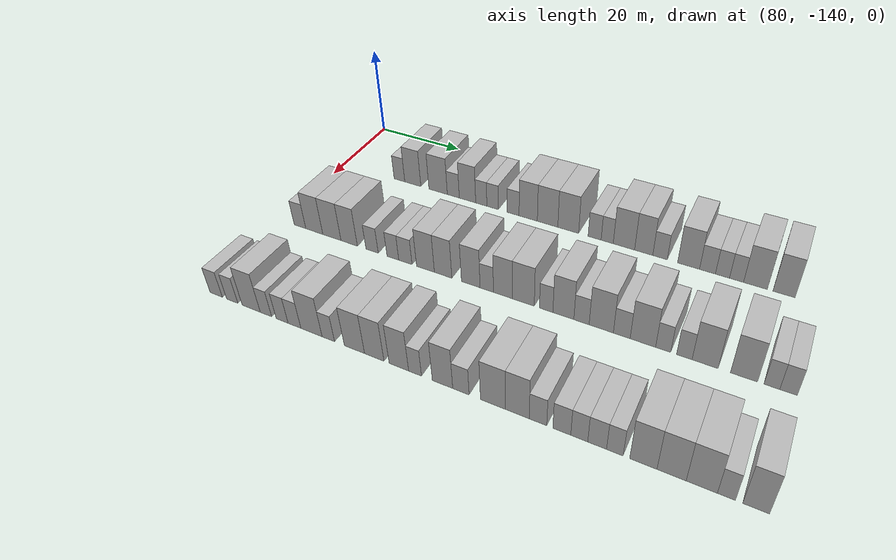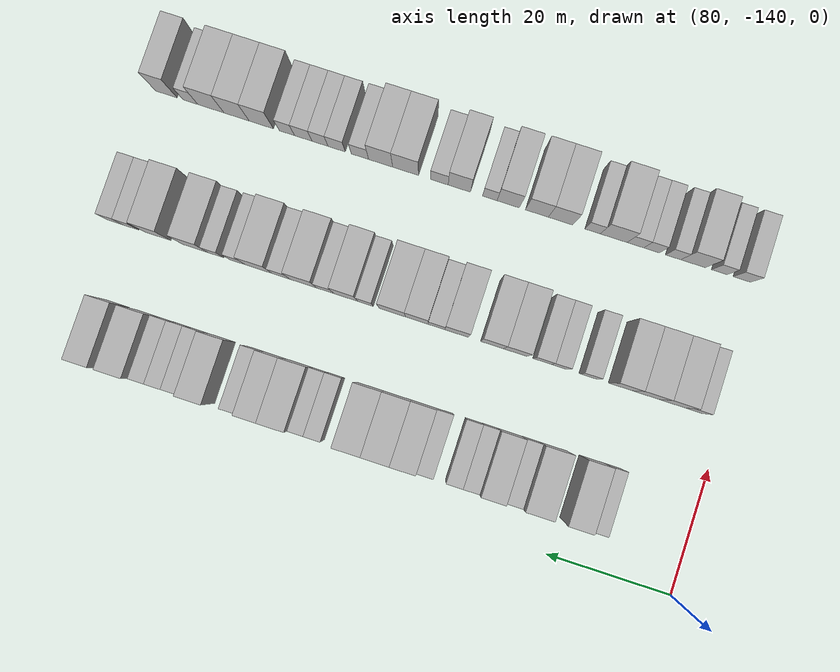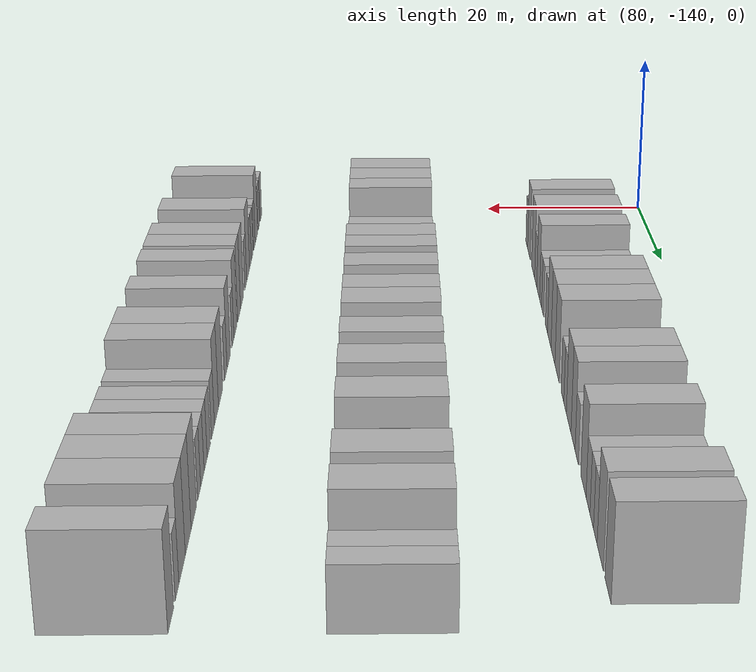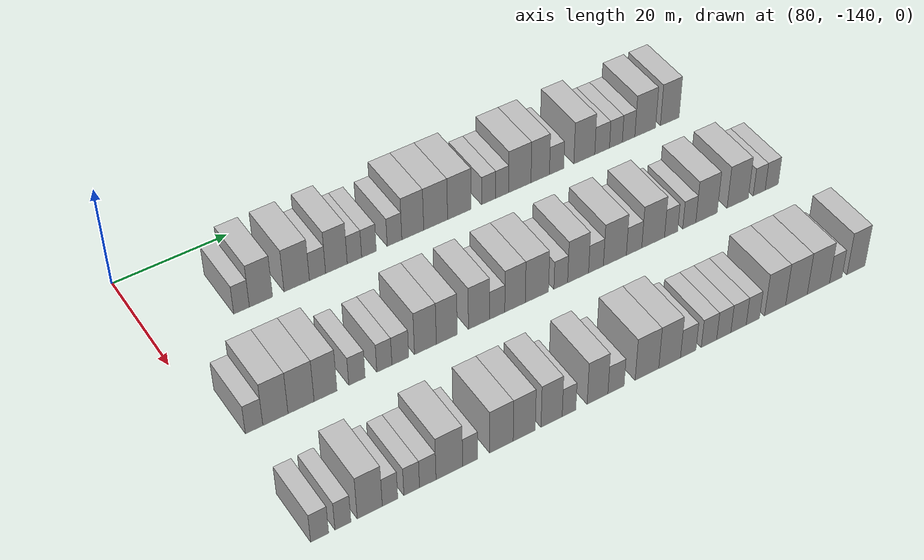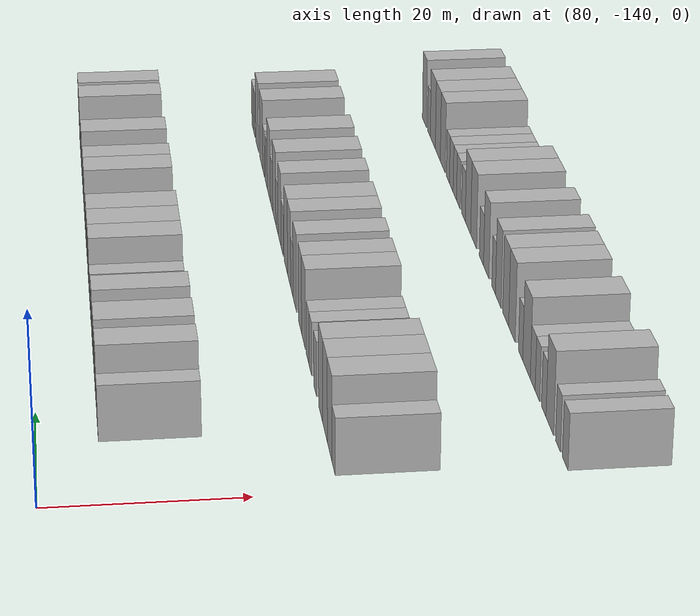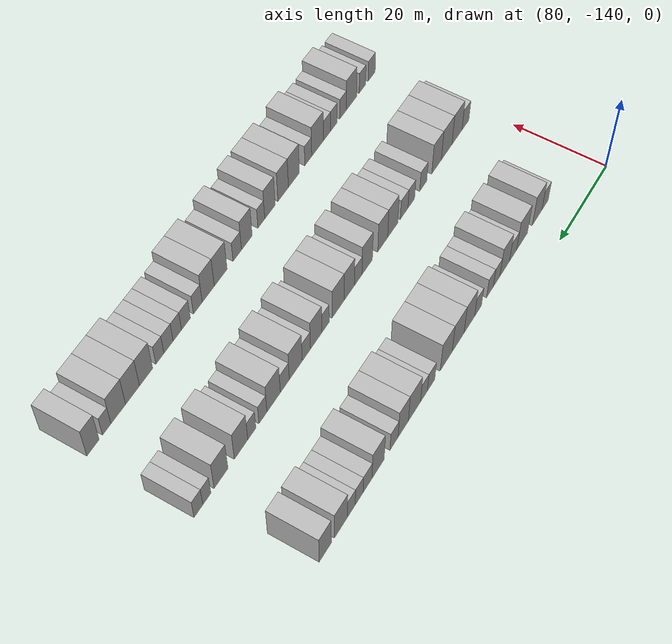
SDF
<sdf version="1.6">
 <world name="default">
  <model name="building_610">
   <static>1</static>
   <pose>91.0000 -125.6692 0 0.000000 0.000000 0.000000</pose>
   <link name="link">
    <pose>0 0 3.00 0 0 0</pose>
    <collision name="collision"><geometry><box><size>10.0000 2.6983 6.0000</size></box></geometry></collision>
    <visual name="visual">
     <cast_shadows>0</cast_shadows>
     <geometry><box><size>10.0000 2.6983 6.0000</size></box></geometry>
     <material>
      <script>
       <uri>model://HANNAS_wall/materials/scripts</uri>
       <uri>model://HANNAS_wall/materials/textures</uri>
       <name>vrc/HANNAS_wall</name>
      </script>
     </material>
    </visual>
   </link>
  </model>
  <model name="building_611">
   <static>1</static>
   <pose>91.0000 -122.3058 0 0.000000 0.000000 0.000000</pose>
   <link name="link">
    <pose>0 0 4.50 0 0 0</pose>
    <collision name="collision"><geometry><box><size>10.0000 4.0284 9.0000</size></box></geometry></collision>
    <visual name="visual">
     <cast_shadows>0</cast_shadows>
     <geometry><box><size>10.0000 4.0284 9.0000</size></box></geometry>
     <material>
      <script>
       <uri>model://HANNAS_wall/materials/scripts</uri>
       <uri>model://HANNAS_wall/materials/textures</uri>
       <name>vrc/HANNAS_wall</name>
      </script>
     </material>
    </visual>
   </link>
  </model>
  <model name="building_612">
   <static>1</static>
   <pose>91.0000 -116.0502 0 0.000000 0.000000 0.000000</pose>
   <link name="link">
    <pose>0 0 4.50 0 0 0</pose>
    <collision name="collision"><geometry><box><size>10.0000 4.4828 9.0000</size></box></geometry></collision>
    <visual name="visual">
     <cast_shadows>0</cast_shadows>
     <geometry><box><size>10.0000 4.4828 9.0000</size></box></geometry>
     <material>
      <script>
       <uri>model://HANNAS_wall/materials/scripts</uri>
       <uri>model://HANNAS_wall/materials/textures</uri>
       <name>vrc/HANNAS_wall</name>
      </script>
     </material>
    </visual>
   </link>
  </model>
  <model name="building_613">
   <static>1</static>
   <pose>91.0000 -112.3724 0 0.000000 0.000000 0.000000</pose>
   <link name="link">
    <pose>0 0 3.00 0 0 0</pose>
    <collision name="collision"><geometry><box><size>10.0000 2.8727 6.0000</size></box></geometry></collision>
    <visual name="visual">
     <cast_shadows>0</cast_shadows>
     <geometry><box><size>10.0000 2.8727 6.0000</size></box></geometry>
     <material>
      <script>
       <uri>model://HANNAS_wall/materials/scripts</uri>
       <uri>model://HANNAS_wall/materials/textures</uri>
       <name>vrc/HANNAS_wall</name>
      </script>
     </material>
    </visual>
   </link>
  </model>
  <model name="building_614">
   <static>1</static>
   <pose>91.0000 -108.9942 0 0.000000 0.000000 0.000000</pose>
   <link name="link">
    <pose>0 0 4.50 0 0 0</pose>
    <collision name="collision"><geometry><box><size>10.0000 3.8838 9.0000</size></box></geometry></collision>
    <visual name="visual">
     <cast_shadows>0</cast_shadows>
     <geometry><box><size>10.0000 3.8838 9.0000</size></box></geometry>
     <material>
      <script>
       <uri>model://HANNAS_wall/materials/scripts</uri>
       <uri>model://HANNAS_wall/materials/textures</uri>
       <name>vrc/HANNAS_wall</name>
      </script>
     </material>
    </visual>
   </link>
  </model>
  <model name="building_615">
   <static>1</static>
   <pose>91.0000 -105.7490 0 0.000000 0.000000 0.000000</pose>
   <link name="link">
    <pose>0 0 3.00 0 0 0</pose>
    <collision name="collision"><geometry><box><size>10.0000 2.6066 6.0000</size></box></geometry></collision>
    <visual name="visual">
     <cast_shadows>0</cast_shadows>
     <geometry><box><size>10.0000 2.6066 6.0000</size></box></geometry>
     <material>
      <script>
       <uri>model://HANNAS_wall/materials/scripts</uri>
       <uri>model://HANNAS_wall/materials/textures</uri>
       <name>vrc/HANNAS_wall</name>
      </script>
     </material>
    </visual>
   </link>
  </model>
  <model name="building_616">
   <static>1</static>
   <pose>91.0000 -103.1184 0 0.000000 0.000000 0.000000</pose>
   <link name="link">
    <pose>0 0 3.00 0 0 0</pose>
    <collision name="collision"><geometry><box><size>10.0000 2.6545 6.0000</size></box></geometry></collision>
    <visual name="visual">
     <cast_shadows>0</cast_shadows>
     <geometry><box><size>10.0000 2.6545 6.0000</size></box></geometry>
     <material>
      <script>
       <uri>model://HANNAS_wall/materials/scripts</uri>
       <uri>model://HANNAS_wall/materials/textures</uri>
       <name>vrc/HANNAS_wall</name>
      </script>
     </material>
    </visual>
   </link>
  </model>
  <model name="building_617">
   <static>1</static>
   <pose>91.0000 -98.4428 0 0.000000 0.000000 0.000000</pose>
   <link name="link">
    <pose>0 0 3.00 0 0 0</pose>
    <collision name="collision"><geometry><box><size>10.0000 2.6968 6.0000</size></box></geometry></collision>
    <visual name="visual">
     <cast_shadows>0</cast_shadows>
     <geometry><box><size>10.0000 2.6968 6.0000</size></box></geometry>
     <material>
      <script>
       <uri>model://HANNAS_wall/materials/scripts</uri>
       <uri>model://HANNAS_wall/materials/textures</uri>
       <name>vrc/HANNAS_wall</name>
      </script>
     </material>
    </visual>
   </link>
  </model>
  <model name="building_618">
   <static>1</static>
   <pose>91.0000 -95.0631 0 0.000000 0.000000 0.000000</pose>
   <link name="link">
    <pose>0 0 4.50 0 0 0</pose>
    <collision name="collision"><geometry><box><size>10.0000 4.0624 9.0000</size></box></geometry></collision>
    <visual name="visual">
     <cast_shadows>0</cast_shadows>
     <geometry><box><size>10.0000 4.0624 9.0000</size></box></geometry>
     <material>
      <script>
       <uri>model://HANNAS_wall/materials/scripts</uri>
       <uri>model://HANNAS_wall/materials/textures</uri>
       <name>vrc/HANNAS_wall</name>
      </script>
     </material>
    </visual>
   </link>
  </model>
  <model name="building_619">
   <static>1</static>
   <pose>91.0000 -90.7962 0 0.000000 0.000000 0.000000</pose>
   <link name="link">
    <pose>0 0 4.50 0 0 0</pose>
    <collision name="collision"><geometry><box><size>10.0000 4.4715 9.0000</size></box></geometry></collision>
    <visual name="visual">
     <cast_shadows>0</cast_shadows>
     <geometry><box><size>10.0000 4.4715 9.0000</size></box></geometry>
     <material>
      <script>
       <uri>model://HANNAS_wall/materials/scripts</uri>
       <uri>model://HANNAS_wall/materials/textures</uri>
       <name>vrc/HANNAS_wall</name>
      </script>
     </material>
    </visual>
   </link>
  </model>
  <model name="building_620">
   <static>1</static>
   <pose>91.0000 -86.3330 0 0.000000 0.000000 0.000000</pose>
   <link name="link">
    <pose>0 0 4.50 0 0 0</pose>
    <collision name="collision"><geometry><box><size>10.0000 4.4549 9.0000</size></box></geometry></collision>
    <visual name="visual">
     <cast_shadows>0</cast_shadows>
     <geometry><box><size>10.0000 4.4549 9.0000</size></box></geometry>
     <material>
      <script>
       <uri>model://HANNAS_wall/materials/scripts</uri>
       <uri>model://HANNAS_wall/materials/textures</uri>
       <name>vrc/HANNAS_wall</name>
      </script>
     </material>
    </visual>
   </link>
  </model>
  <model name="building_621">
   <static>1</static>
   <pose>91.0000 -80.7503 0 0.000000 0.000000 0.000000</pose>
   <link name="link">
    <pose>0 0 3.00 0 0 0</pose>
    <collision name="collision"><geometry><box><size>10.0000 2.7104 6.0000</size></box></geometry></collision>
    <visual name="visual">
     <cast_shadows>0</cast_shadows>
     <geometry><box><size>10.0000 2.7104 6.0000</size></box></geometry>
     <material>
      <script>
       <uri>model://HANNAS_wall/materials/scripts</uri>
       <uri>model://HANNAS_wall/materials/textures</uri>
       <name>vrc/HANNAS_wall</name>
      </script>
     </material>
    </visual>
   </link>
  </model>
  <model name="building_622">
   <static>1</static>
   <pose>91.0000 -78.1471 0 0.000000 0.000000 0.000000</pose>
   <link name="link">
    <pose>0 0 3.00 0 0 0</pose>
    <collision name="collision"><geometry><box><size>10.0000 2.4960 6.0000</size></box></geometry></collision>
    <visual name="visual">
     <cast_shadows>0</cast_shadows>
     <geometry><box><size>10.0000 2.4960 6.0000</size></box></geometry>
     <material>
      <script>
       <uri>model://HANNAS_wall/materials/scripts</uri>
       <uri>model://HANNAS_wall/materials/textures</uri>
       <name>vrc/HANNAS_wall</name>
      </script>
     </material>
    </visual>
   </link>
  </model>
  <model name="building_623">
   <static>1</static>
   <pose>91.0000 -74.7275 0 0.000000 0.000000 0.000000</pose>
   <link name="link">
    <pose>0 0 4.50 0 0 0</pose>
    <collision name="collision"><geometry><box><size>10.0000 4.3433 9.0000</size></box></geometry></collision>
    <visual name="visual">
     <cast_shadows>0</cast_shadows>
     <geometry><box><size>10.0000 4.3433 9.0000</size></box></geometry>
     <material>
      <script>
       <uri>model://HANNAS_wall/materials/scripts</uri>
       <uri>model://HANNAS_wall/materials/textures</uri>
       <name>vrc/HANNAS_wall</name>
      </script>
     </material>
    </visual>
   </link>
  </model>
  <model name="building_624">
   <static>1</static>
   <pose>91.0000 -70.7423 0 0.000000 0.000000 0.000000</pose>
   <link name="link">
    <pose>0 0 4.50 0 0 0</pose>
    <collision name="collision"><geometry><box><size>10.0000 3.6270 9.0000</size></box></geometry></collision>
    <visual name="visual">
     <cast_shadows>0</cast_shadows>
     <geometry><box><size>10.0000 3.6270 9.0000</size></box></geometry>
     <material>
      <script>
       <uri>model://HANNAS_wall/materials/scripts</uri>
       <uri>model://HANNAS_wall/materials/textures</uri>
       <name>vrc/HANNAS_wall</name>
      </script>
     </material>
    </visual>
   </link>
  </model>
  <model name="building_625">
   <static>1</static>
   <pose>91.0000 -67.5109 0 0.000000 0.000000 0.000000</pose>
   <link name="link">
    <pose>0 0 3.00 0 0 0</pose>
    <collision name="collision"><geometry><box><size>10.0000 2.8357 6.0000</size></box></geometry></collision>
    <visual name="visual">
     <cast_shadows>0</cast_shadows>
     <geometry><box><size>10.0000 2.8357 6.0000</size></box></geometry>
     <material>
      <script>
       <uri>model://HANNAS_wall/materials/scripts</uri>
       <uri>model://HANNAS_wall/materials/textures</uri>
       <name>vrc/HANNAS_wall</name>
      </script>
     </material>
    </visual>
   </link>
  </model>
  <model name="building_626">
   <static>1</static>
   <pose>91.0000 -61.9955 0 0.000000 0.000000 0.000000</pose>
   <link name="link">
    <pose>0 0 4.50 0 0 0</pose>
    <collision name="collision"><geometry><box><size>10.0000 4.1952 9.0000</size></box></geometry></collision>
    <visual name="visual">
     <cast_shadows>0</cast_shadows>
     <geometry><box><size>10.0000 4.1952 9.0000</size></box></geometry>
     <material>
      <script>
       <uri>model://HANNAS_wall/materials/scripts</uri>
       <uri>model://HANNAS_wall/materials/textures</uri>
       <name>vrc/HANNAS_wall</name>
      </script>
     </material>
    </visual>
   </link>
  </model>
  <model name="building_627">
   <static>1</static>
   <pose>91.0000 -58.4069 0 0.000000 0.000000 0.000000</pose>
   <link name="link">
    <pose>0 0 3.00 0 0 0</pose>
    <collision name="collision"><geometry><box><size>10.0000 2.9820 6.0000</size></box></geometry></collision>
    <visual name="visual">
     <cast_shadows>0</cast_shadows>
     <geometry><box><size>10.0000 2.9820 6.0000</size></box></geometry>
     <material>
      <script>
       <uri>model://HANNAS_wall/materials/scripts</uri>
       <uri>model://HANNAS_wall/materials/textures</uri>
       <name>vrc/HANNAS_wall</name>
      </script>
     </material>
    </visual>
   </link>
  </model>
  <model name="building_628">
   <static>1</static>
   <pose>91.0000 -55.6106 0 0.000000 0.000000 0.000000</pose>
   <link name="link">
    <pose>0 0 3.00 0 0 0</pose>
    <collision name="collision"><geometry><box><size>10.0000 2.6106 6.0000</size></box></geometry></collision>
    <visual name="visual">
     <cast_shadows>0</cast_shadows>
     <geometry><box><size>10.0000 2.6106 6.0000</size></box></geometry>
     <material>
      <script>
       <uri>model://HANNAS_wall/materials/scripts</uri>
       <uri>model://HANNAS_wall/materials/textures</uri>
       <name>vrc/HANNAS_wall</name>
      </script>
     </material>
    </visual>
   </link>
  </model>
  <model name="building_629">
   <static>1</static>
   <pose>91.0000 -53.0192 0 0.000000 0.000000 0.000000</pose>
   <link name="link">
    <pose>0 0 3.00 0 0 0</pose>
    <collision name="collision"><geometry><box><size>10.0000 2.5721 6.0000</size></box></geometry></collision>
    <visual name="visual">
     <cast_shadows>0</cast_shadows>
     <geometry><box><size>10.0000 2.5721 6.0000</size></box></geometry>
     <material>
      <script>
       <uri>model://HANNAS_wall/materials/scripts</uri>
       <uri>model://HANNAS_wall/materials/textures</uri>
       <name>vrc/HANNAS_wall</name>
      </script>
     </material>
    </visual>
   </link>
  </model>
  <model name="building_630">
   <static>1</static>
   <pose>91.0000 -49.5967 0 0.000000 0.000000 0.000000</pose>
   <link name="link">
    <pose>0 0 4.50 0 0 0</pose>
    <collision name="collision"><geometry><box><size>10.0000 4.2729 9.0000</size></box></geometry></collision>
    <visual name="visual">
     <cast_shadows>0</cast_shadows>
     <geometry><box><size>10.0000 4.2729 9.0000</size></box></geometry>
     <material>
      <script>
       <uri>model://HANNAS_wall/materials/scripts</uri>
       <uri>model://HANNAS_wall/materials/textures</uri>
       <name>vrc/HANNAS_wall</name>
      </script>
     </material>
    </visual>
   </link>
  </model>
  <model name="building_631">
   <static>1</static>
   <pose>91.0000 -44.5138 0 0.000000 0.000000 0.000000</pose>
   <link name="link">
    <pose>0 0 4.50 0 0 0</pose>
    <collision name="collision"><geometry><box><size>10.0000 3.8930 9.0000</size></box></geometry></collision>
    <visual name="visual">
     <cast_shadows>0</cast_shadows>
     <geometry><box><size>10.0000 3.8930 9.0000</size></box></geometry>
     <material>
      <script>
       <uri>model://HANNAS_wall/materials/scripts</uri>
       <uri>model://HANNAS_wall/materials/textures</uri>
       <name>vrc/HANNAS_wall</name>
      </script>
     </material>
    </visual>
   </link>
  </model>
  <model name="building_792">
   <static>1</static>
   <pose>113.0000 -135.0841 0 0.000000 0.000000 0.000000</pose>
   <link name="link">
    <pose>0 0 3.00 0 0 0</pose>
    <collision name="collision"><geometry><box><size>10.0000 2.8642 6.0000</size></box></geometry></collision>
    <visual name="visual">
     <cast_shadows>0</cast_shadows>
     <geometry><box><size>10.0000 2.8642 6.0000</size></box></geometry>
     <material>
      <script>
       <uri>model://HANNAS_wall/materials/scripts</uri>
       <uri>model://HANNAS_wall/materials/textures</uri>
       <name>vrc/HANNAS_wall</name>
      </script>
     </material>
    </visual>
   </link>
  </model>
  <model name="building_793">
   <static>1</static>
   <pose>113.0000 -131.5770 0 0.000000 0.000000 0.000000</pose>
   <link name="link">
    <pose>0 0 4.50 0 0 0</pose>
    <collision name="collision"><geometry><box><size>10.0000 4.1500 9.0000</size></box></geometry></collision>
    <visual name="visual">
     <cast_shadows>0</cast_shadows>
     <geometry><box><size>10.0000 4.1500 9.0000</size></box></geometry>
     <material>
      <script>
       <uri>model://HANNAS_wall/materials/scripts</uri>
       <uri>model://HANNAS_wall/materials/textures</uri>
       <name>vrc/HANNAS_wall</name>
      </script>
     </material>
    </visual>
   </link>
  </model>
  <model name="building_794">
   <static>1</static>
   <pose>113.0000 -127.3290 0 0.000000 0.000000 0.000000</pose>
   <link name="link">
    <pose>0 0 4.50 0 0 0</pose>
    <collision name="collision"><geometry><box><size>10.0000 4.3460 9.0000</size></box></geometry></collision>
    <visual name="visual">
     <cast_shadows>0</cast_shadows>
     <geometry><box><size>10.0000 4.3460 9.0000</size></box></geometry>
     <material>
      <script>
       <uri>model://HANNAS_wall/materials/scripts</uri>
       <uri>model://HANNAS_wall/materials/textures</uri>
       <name>vrc/HANNAS_wall</name>
      </script>
     </material>
    </visual>
   </link>
  </model>
  <model name="building_795">
   <static>1</static>
   <pose>113.0000 -123.2343 0 0.000000 0.000000 0.000000</pose>
   <link name="link">
    <pose>0 0 4.50 0 0 0</pose>
    <collision name="collision"><geometry><box><size>10.0000 3.8435 9.0000</size></box></geometry></collision>
    <visual name="visual">
     <cast_shadows>0</cast_shadows>
     <geometry><box><size>10.0000 3.8435 9.0000</size></box></geometry>
     <material>
      <script>
       <uri>model://HANNAS_wall/materials/scripts</uri>
       <uri>model://HANNAS_wall/materials/textures</uri>
       <name>vrc/HANNAS_wall</name>
      </script>
     </material>
    </visual>
   </link>
  </model>
  <model name="building_796">
   <static>1</static>
   <pose>113.0000 -117.9149 0 0.000000 0.000000 0.000000</pose>
   <link name="link">
    <pose>0 0 3.00 0 0 0</pose>
    <collision name="collision"><geometry><box><size>10.0000 2.7952 6.0000</size></box></geometry></collision>
    <visual name="visual">
     <cast_shadows>0</cast_shadows>
     <geometry><box><size>10.0000 2.7952 6.0000</size></box></geometry>
     <material>
      <script>
       <uri>model://HANNAS_wall/materials/scripts</uri>
       <uri>model://HANNAS_wall/materials/textures</uri>
       <name>vrc/HANNAS_wall</name>
      </script>
     </material>
    </visual>
   </link>
  </model>
  <model name="building_797">
   <static>1</static>
   <pose>113.0000 -113.2122 0 0.000000 0.000000 0.000000</pose>
   <link name="link">
    <pose>0 0 3.00 0 0 0</pose>
    <collision name="collision"><geometry><box><size>10.0000 2.6102 6.0000</size></box></geometry></collision>
    <visual name="visual">
     <cast_shadows>0</cast_shadows>
     <geometry><box><size>10.0000 2.6102 6.0000</size></box></geometry>
     <material>
      <script>
       <uri>model://HANNAS_wall/materials/scripts</uri>
       <uri>model://HANNAS_wall/materials/textures</uri>
       <name>vrc/HANNAS_wall</name>
      </script>
     </material>
    </visual>
   </link>
  </model>
  <model name="building_798">
   <static>1</static>
   <pose>113.0000 -110.4402 0 0.000000 0.000000 0.000000</pose>
   <link name="link">
    <pose>0 0 3.00 0 0 0</pose>
    <collision name="collision"><geometry><box><size>10.0000 2.9339 6.0000</size></box></geometry></collision>
    <visual name="visual">
     <cast_shadows>0</cast_shadows>
     <geometry><box><size>10.0000 2.9339 6.0000</size></box></geometry>
     <material>
      <script>
       <uri>model://HANNAS_wall/materials/scripts</uri>
       <uri>model://HANNAS_wall/materials/textures</uri>
       <name>vrc/HANNAS_wall</name>
      </script>
     </material>
    </visual>
   </link>
  </model>
  <model name="building_799">
   <static>1</static>
   <pose>113.0000 -106.0485 0 0.000000 0.000000 0.000000</pose>
   <link name="link">
    <pose>0 0 4.50 0 0 0</pose>
    <collision name="collision"><geometry><box><size>10.0000 3.8496 9.0000</size></box></geometry></collision>
    <visual name="visual">
     <cast_shadows>0</cast_shadows>
     <geometry><box><size>10.0000 3.8496 9.0000</size></box></geometry>
     <material>
      <script>
       <uri>model://HANNAS_wall/materials/scripts</uri>
       <uri>model://HANNAS_wall/materials/textures</uri>
       <name>vrc/HANNAS_wall</name>
      </script>
     </material>
    </visual>
   </link>
  </model>
  <model name="building_800">
   <static>1</static>
   <pose>113.0000 -102.2698 0 0.000000 0.000000 0.000000</pose>
   <link name="link">
    <pose>0 0 4.50 0 0 0</pose>
    <collision name="collision"><geometry><box><size>10.0000 3.7078 9.0000</size></box></geometry></collision>
    <visual name="visual">
     <cast_shadows>0</cast_shadows>
     <geometry><box><size>10.0000 3.7078 9.0000</size></box></geometry>
     <material>
      <script>
       <uri>model://HANNAS_wall/materials/scripts</uri>
       <uri>model://HANNAS_wall/materials/textures</uri>
       <name>vrc/HANNAS_wall</name>
      </script>
     </material>
    </visual>
   </link>
  </model>
  <model name="building_801">
   <static>1</static>
   <pose>113.0000 -96.4932 0 0.000000 0.000000 0.000000</pose>
   <link name="link">
    <pose>0 0 4.50 0 0 0</pose>
    <collision name="collision"><geometry><box><size>10.0000 3.8453 9.0000</size></box></geometry></collision>
    <visual name="visual">
     <cast_shadows>0</cast_shadows>
     <geometry><box><size>10.0000 3.8453 9.0000</size></box></geometry>
     <material>
      <script>
       <uri>model://HANNAS_wall/materials/scripts</uri>
       <uri>model://HANNAS_wall/materials/textures</uri>
       <name>vrc/HANNAS_wall</name>
      </script>
     </material>
    </visual>
   </link>
  </model>
  <model name="building_802">
   <static>1</static>
   <pose>113.0000 -93.2089 0 0.000000 0.000000 0.000000</pose>
   <link name="link">
    <pose>0 0 3.00 0 0 0</pose>
    <collision name="collision"><geometry><box><size>10.0000 2.7233 6.0000</size></box></geometry></collision>
    <visual name="visual">
     <cast_shadows>0</cast_shadows>
     <geometry><box><size>10.0000 2.7233 6.0000</size></box></geometry>
     <material>
      <script>
       <uri>model://HANNAS_wall/materials/scripts</uri>
       <uri>model://HANNAS_wall/materials/textures</uri>
       <name>vrc/HANNAS_wall</name>
      </script>
     </material>
    </visual>
   </link>
  </model>
  <model name="building_803">
   <static>1</static>
   <pose>113.0000 -89.9731 0 0.000000 0.000000 0.000000</pose>
   <link name="link">
    <pose>0 0 4.50 0 0 0</pose>
    <collision name="collision"><geometry><box><size>10.0000 3.7484 9.0000</size></box></geometry></collision>
    <visual name="visual">
     <cast_shadows>0</cast_shadows>
     <geometry><box><size>10.0000 3.7484 9.0000</size></box></geometry>
     <material>
      <script>
       <uri>model://HANNAS_wall/materials/scripts</uri>
       <uri>model://HANNAS_wall/materials/textures</uri>
       <name>vrc/HANNAS_wall</name>
      </script>
     </material>
    </visual>
   </link>
  </model>
  <model name="building_804">
   <static>1</static>
   <pose>113.0000 -85.9455 0 0.000000 0.000000 0.000000</pose>
   <link name="link">
    <pose>0 0 4.50 0 0 0</pose>
    <collision name="collision"><geometry><box><size>10.0000 4.3067 9.0000</size></box></geometry></collision>
    <visual name="visual">
     <cast_shadows>0</cast_shadows>
     <geometry><box><size>10.0000 4.3067 9.0000</size></box></geometry>
     <material>
      <script>
       <uri>model://HANNAS_wall/materials/scripts</uri>
       <uri>model://HANNAS_wall/materials/textures</uri>
       <name>vrc/HANNAS_wall</name>
      </script>
     </material>
    </visual>
   </link>
  </model>
  <model name="building_805">
   <static>1</static>
   <pose>113.0000 -81.5091 0 0.000000 0.000000 0.000000</pose>
   <link name="link">
    <pose>0 0 3.00 0 0 0</pose>
    <collision name="collision"><geometry><box><size>10.0000 2.5662 6.0000</size></box></geometry></collision>
    <visual name="visual">
     <cast_shadows>0</cast_shadows>
     <geometry><box><size>10.0000 2.5662 6.0000</size></box></geometry>
     <material>
      <script>
       <uri>model://HANNAS_wall/materials/scripts</uri>
       <uri>model://HANNAS_wall/materials/textures</uri>
       <name>vrc/HANNAS_wall</name>
      </script>
     </material>
    </visual>
   </link>
  </model>
  <model name="building_806">
   <static>1</static>
   <pose>113.0000 -78.2518 0 0.000000 0.000000 0.000000</pose>
   <link name="link">
    <pose>0 0 4.50 0 0 0</pose>
    <collision name="collision"><geometry><box><size>10.0000 3.9485 9.0000</size></box></geometry></collision>
    <visual name="visual">
     <cast_shadows>0</cast_shadows>
     <geometry><box><size>10.0000 3.9485 9.0000</size></box></geometry>
     <material>
      <script>
       <uri>model://HANNAS_wall/materials/scripts</uri>
       <uri>model://HANNAS_wall/materials/textures</uri>
       <name>vrc/HANNAS_wall</name>
      </script>
     </material>
    </visual>
   </link>
  </model>
  <model name="building_807">
   <static>1</static>
   <pose>113.0000 -74.8680 0 0.000000 0.000000 0.000000</pose>
   <link name="link">
    <pose>0 0 3.00 0 0 0</pose>
    <collision name="collision"><geometry><box><size>10.0000 2.8190 6.0000</size></box></geometry></collision>
    <visual name="visual">
     <cast_shadows>0</cast_shadows>
     <geometry><box><size>10.0000 2.8190 6.0000</size></box></geometry>
     <material>
      <script>
       <uri>model://HANNAS_wall/materials/scripts</uri>
       <uri>model://HANNAS_wall/materials/textures</uri>
       <name>vrc/HANNAS_wall</name>
      </script>
     </material>
    </visual>
   </link>
  </model>
  <model name="building_808">
   <static>1</static>
   <pose>113.0000 -71.2607 0 0.000000 0.000000 0.000000</pose>
   <link name="link">
    <pose>0 0 4.50 0 0 0</pose>
    <collision name="collision"><geometry><box><size>10.0000 4.3955 9.0000</size></box></geometry></collision>
    <visual name="visual">
     <cast_shadows>0</cast_shadows>
     <geometry><box><size>10.0000 4.3955 9.0000</size></box></geometry>
     <material>
      <script>
       <uri>model://HANNAS_wall/materials/scripts</uri>
       <uri>model://HANNAS_wall/materials/textures</uri>
       <name>vrc/HANNAS_wall</name>
      </script>
     </material>
    </visual>
   </link>
  </model>
  <model name="building_809">
   <static>1</static>
   <pose>113.0000 -67.5701 0 0.000000 0.000000 0.000000</pose>
   <link name="link">
    <pose>0 0 3.00 0 0 0</pose>
    <collision name="collision"><geometry><box><size>10.0000 2.9857 6.0000</size></box></geometry></collision>
    <visual name="visual">
     <cast_shadows>0</cast_shadows>
     <geometry><box><size>10.0000 2.9857 6.0000</size></box></geometry>
     <material>
      <script>
       <uri>model://HANNAS_wall/materials/scripts</uri>
       <uri>model://HANNAS_wall/materials/textures</uri>
       <name>vrc/HANNAS_wall</name>
      </script>
     </material>
    </visual>
   </link>
  </model>
  <model name="building_810">
   <static>1</static>
   <pose>113.0000 -63.8565 0 0.000000 0.000000 0.000000</pose>
   <link name="link">
    <pose>0 0 4.50 0 0 0</pose>
    <collision name="collision"><geometry><box><size>10.0000 4.4415 9.0000</size></box></geometry></collision>
    <visual name="visual">
     <cast_shadows>0</cast_shadows>
     <geometry><box><size>10.0000 4.4415 9.0000</size></box></geometry>
     <material>
      <script>
       <uri>model://HANNAS_wall/materials/scripts</uri>
       <uri>model://HANNAS_wall/materials/textures</uri>
       <name>vrc/HANNAS_wall</name>
      </script>
     </material>
    </visual>
   </link>
  </model>
  <model name="building_811">
   <static>1</static>
   <pose>113.0000 -60.3430 0 0.000000 0.000000 0.000000</pose>
   <link name="link">
    <pose>0 0 3.00 0 0 0</pose>
    <collision name="collision"><geometry><box><size>10.0000 2.5856 6.0000</size></box></geometry></collision>
    <visual name="visual">
     <cast_shadows>0</cast_shadows>
     <geometry><box><size>10.0000 2.5856 6.0000</size></box></geometry>
     <material>
      <script>
       <uri>model://HANNAS_wall/materials/scripts</uri>
       <uri>model://HANNAS_wall/materials/textures</uri>
       <name>vrc/HANNAS_wall</name>
      </script>
     </material>
    </visual>
   </link>
  </model>
  <model name="building_812">
   <static>1</static>
   <pose>113.0000 -56.7518 0 0.000000 0.000000 0.000000</pose>
   <link name="link">
    <pose>0 0 3.00 0 0 0</pose>
    <collision name="collision"><geometry><box><size>10.0000 2.5967 6.0000</size></box></geometry></collision>
    <visual name="visual">
     <cast_shadows>0</cast_shadows>
     <geometry><box><size>10.0000 2.5967 6.0000</size></box></geometry>
     <material>
      <script>
       <uri>model://HANNAS_wall/materials/scripts</uri>
       <uri>model://HANNAS_wall/materials/textures</uri>
       <name>vrc/HANNAS_wall</name>
      </script>
     </material>
    </visual>
   </link>
  </model>
  <model name="building_813">
   <static>1</static>
   <pose>113.0000 -53.3116 0 0.000000 0.000000 0.000000</pose>
   <link name="link">
    <pose>0 0 4.50 0 0 0</pose>
    <collision name="collision"><geometry><box><size>10.0000 4.2837 9.0000</size></box></geometry></collision>
    <visual name="visual">
     <cast_shadows>0</cast_shadows>
     <geometry><box><size>10.0000 4.2837 9.0000</size></box></geometry>
     <material>
      <script>
       <uri>model://HANNAS_wall/materials/scripts</uri>
       <uri>model://HANNAS_wall/materials/textures</uri>
       <name>vrc/HANNAS_wall</name>
      </script>
     </material>
    </visual>
   </link>
  </model>
  <model name="building_814">
   <static>1</static>
   <pose>113.0000 -47.0121 0 0.000000 0.000000 0.000000</pose>
   <link name="link">
    <pose>0 0 4.50 0 0 0</pose>
    <collision name="collision"><geometry><box><size>10.0000 4.3153 9.0000</size></box></geometry></collision>
    <visual name="visual">
     <cast_shadows>0</cast_shadows>
     <geometry><box><size>10.0000 4.3153 9.0000</size></box></geometry>
     <material>
      <script>
       <uri>model://HANNAS_wall/materials/scripts</uri>
       <uri>model://HANNAS_wall/materials/textures</uri>
       <name>vrc/HANNAS_wall</name>
      </script>
     </material>
    </visual>
   </link>
  </model>
  <model name="building_815">
   <static>1</static>
   <pose>113.0000 -42.6283 0 0.000000 0.000000 0.000000</pose>
   <link name="link">
    <pose>0 0 3.00 0 0 0</pose>
    <collision name="collision"><geometry><box><size>10.0000 2.4524 6.0000</size></box></geometry></collision>
    <visual name="visual">
     <cast_shadows>0</cast_shadows>
     <geometry><box><size>10.0000 2.4524 6.0000</size></box></geometry>
     <material>
      <script>
       <uri>model://HANNAS_wall/materials/scripts</uri>
       <uri>model://HANNAS_wall/materials/textures</uri>
       <name>vrc/HANNAS_wall</name>
      </script>
     </material>
    </visual>
   </link>
  </model>
  <model name="building_816">
   <static>1</static>
   <pose>113.0000 -40.0595 0 0.000000 0.000000 0.000000</pose>
   <link name="link">
    <pose>0 0 3.00 0 0 0</pose>
    <collision name="collision"><geometry><box><size>10.0000 2.6853 6.0000</size></box></geometry></collision>
    <visual name="visual">
     <cast_shadows>0</cast_shadows>
     <geometry><box><size>10.0000 2.6853 6.0000</size></box></geometry>
     <material>
      <script>
       <uri>model://HANNAS_wall/materials/scripts</uri>
       <uri>model://HANNAS_wall/materials/textures</uri>
       <name>vrc/HANNAS_wall</name>
      </script>
     </material>
    </visual>
   </link>
  </model>
  <model name="building_972">
   <static>1</static>
   <pose>135.0000 -136.4694 0 0.000000 0.000000 0.000000</pose>
   <link name="link">
    <pose>0 0 3.00 0 0 0</pose>
    <collision name="collision"><geometry><box><size>10.0000 2.8477 6.0000</size></box></geometry></collision>
    <visual name="visual">
     <cast_shadows>0</cast_shadows>
     <geometry><box><size>10.0000 2.8477 6.0000</size></box></geometry>
     <material>
      <script>
       <uri>model://HANNAS_wall/materials/scripts</uri>
       <uri>model://HANNAS_wall/materials/textures</uri>
       <name>vrc/HANNAS_wall</name>
      </script>
     </material>
    </visual>
   </link>
  </model>
  <model name="building_973">
   <static>1</static>
   <pose>135.0000 -132.7703 0 0.000000 0.000000 0.000000</pose>
   <link name="link">
    <pose>0 0 3.00 0 0 0</pose>
    <collision name="collision"><geometry><box><size>10.0000 2.5506 6.0000</size></box></geometry></collision>
    <visual name="visual">
     <cast_shadows>0</cast_shadows>
     <geometry><box><size>10.0000 2.5506 6.0000</size></box></geometry>
     <material>
      <script>
       <uri>model://HANNAS_wall/materials/scripts</uri>
       <uri>model://HANNAS_wall/materials/textures</uri>
       <name>vrc/HANNAS_wall</name>
      </script>
     </material>
    </visual>
   </link>
  </model>
  <model name="building_974">
   <static>1</static>
   <pose>135.0000 -128.4711 0 0.000000 0.000000 0.000000</pose>
   <link name="link">
    <pose>0 0 4.50 0 0 0</pose>
    <collision name="collision"><geometry><box><size>10.0000 4.0479 9.0000</size></box></geometry></collision>
    <visual name="visual">
     <cast_shadows>0</cast_shadows>
     <geometry><box><size>10.0000 4.0479 9.0000</size></box></geometry>
     <material>
      <script>
       <uri>model://HANNAS_wall/materials/scripts</uri>
       <uri>model://HANNAS_wall/materials/textures</uri>
       <name>vrc/HANNAS_wall</name>
      </script>
     </material>
    </visual>
   </link>
  </model>
  <model name="building_975">
   <static>1</static>
   <pose>135.0000 -125.1912 0 0.000000 0.000000 0.000000</pose>
   <link name="link">
    <pose>0 0 3.00 0 0 0</pose>
    <collision name="collision"><geometry><box><size>10.0000 2.5119 6.0000</size></box></geometry></collision>
    <visual name="visual">
     <cast_shadows>0</cast_shadows>
     <geometry><box><size>10.0000 2.5119 6.0000</size></box></geometry>
     <material>
      <script>
       <uri>model://HANNAS_wall/materials/scripts</uri>
       <uri>model://HANNAS_wall/materials/textures</uri>
       <name>vrc/HANNAS_wall</name>
      </script>
     </material>
    </visual>
   </link>
  </model>
  <model name="building_976">
   <static>1</static>
   <pose>135.0000 -121.6520 0 0.000000 0.000000 0.000000</pose>
   <link name="link">
    <pose>0 0 3.00 0 0 0</pose>
    <collision name="collision"><geometry><box><size>10.0000 2.5663 6.0000</size></box></geometry></collision>
    <visual name="visual">
     <cast_shadows>0</cast_shadows>
     <geometry><box><size>10.0000 2.5663 6.0000</size></box></geometry>
     <material>
      <script>
       <uri>model://HANNAS_wall/materials/scripts</uri>
       <uri>model://HANNAS_wall/materials/textures</uri>
       <name>vrc/HANNAS_wall</name>
      </script>
     </material>
    </visual>
   </link>
  </model>
  <model name="building_977">
   <static>1</static>
   <pose>135.0000 -119.0020 0 0.000000 0.000000 0.000000</pose>
   <link name="link">
    <pose>0 0 3.00 0 0 0</pose>
    <collision name="collision"><geometry><box><size>10.0000 2.7338 6.0000</size></box></geometry></collision>
    <visual name="visual">
     <cast_shadows>0</cast_shadows>
     <geometry><box><size>10.0000 2.7338 6.0000</size></box></geometry>
     <material>
      <script>
       <uri>model://HANNAS_wall/materials/scripts</uri>
       <uri>model://HANNAS_wall/materials/textures</uri>
       <name>vrc/HANNAS_wall</name>
      </script>
     </material>
    </visual>
   </link>
  </model>
  <model name="building_978">
   <static>1</static>
   <pose>135.0000 -115.4123 0 0.000000 0.000000 0.000000</pose>
   <link name="link">
    <pose>0 0 4.50 0 0 0</pose>
    <collision name="collision"><geometry><box><size>10.0000 4.4455 9.0000</size></box></geometry></collision>
    <visual name="visual">
     <cast_shadows>0</cast_shadows>
     <geometry><box><size>10.0000 4.4455 9.0000</size></box></geometry>
     <material>
      <script>
       <uri>model://HANNAS_wall/materials/scripts</uri>
       <uri>model://HANNAS_wall/materials/textures</uri>
       <name>vrc/HANNAS_wall</name>
      </script>
     </material>
    </visual>
   </link>
  </model>
  <model name="building_979">
   <static>1</static>
   <pose>135.0000 -111.9124 0 0.000000 0.000000 0.000000</pose>
   <link name="link">
    <pose>0 0 3.00 0 0 0</pose>
    <collision name="collision"><geometry><box><size>10.0000 2.5543 6.0000</size></box></geometry></collision>
    <visual name="visual">
     <cast_shadows>0</cast_shadows>
     <geometry><box><size>10.0000 2.5543 6.0000</size></box></geometry>
     <material>
      <script>
       <uri>model://HANNAS_wall/materials/scripts</uri>
       <uri>model://HANNAS_wall/materials/textures</uri>
       <name>vrc/HANNAS_wall</name>
      </script>
     </material>
    </visual>
   </link>
  </model>
  <model name="building_980">
   <static>1</static>
   <pose>135.0000 -106.6181 0 0.000000 0.000000 0.000000</pose>
   <link name="link">
    <pose>0 0 4.50 0 0 0</pose>
    <collision name="collision"><geometry><box><size>10.0000 4.0341 9.0000</size></box></geometry></collision>
    <visual name="visual">
     <cast_shadows>0</cast_shadows>
     <geometry><box><size>10.0000 4.0341 9.0000</size></box></geometry>
     <material>
      <script>
       <uri>model://HANNAS_wall/materials/scripts</uri>
       <uri>model://HANNAS_wall/materials/textures</uri>
       <name>vrc/HANNAS_wall</name>
      </script>
     </material>
    </visual>
   </link>
  </model>
  <model name="building_981">
   <static>1</static>
   <pose>135.0000 -102.6988 0 0.000000 0.000000 0.000000</pose>
   <link name="link">
    <pose>0 0 4.50 0 0 0</pose>
    <collision name="collision"><geometry><box><size>10.0000 3.8045 9.0000</size></box></geometry></collision>
    <visual name="visual">
     <cast_shadows>0</cast_shadows>
     <geometry><box><size>10.0000 3.8045 9.0000</size></box></geometry>
     <material>
      <script>
       <uri>model://HANNAS_wall/materials/scripts</uri>
       <uri>model://HANNAS_wall/materials/textures</uri>
       <name>vrc/HANNAS_wall</name>
      </script>
     </material>
    </visual>
   </link>
  </model>
  <model name="building_982">
   <static>1</static>
   <pose>135.0000 -97.9431 0 0.000000 0.000000 0.000000</pose>
   <link name="link">
    <pose>0 0 4.50 0 0 0</pose>
    <collision name="collision"><geometry><box><size>10.0000 3.7067 9.0000</size></box></geometry></collision>
    <visual name="visual">
     <cast_shadows>0</cast_shadows>
     <geometry><box><size>10.0000 3.7067 9.0000</size></box></geometry>
     <material>
      <script>
       <uri>model://HANNAS_wall/materials/scripts</uri>
       <uri>model://HANNAS_wall/materials/textures</uri>
       <name>vrc/HANNAS_wall</name>
      </script>
     </material>
    </visual>
   </link>
  </model>
  <model name="building_983">
   <static>1</static>
   <pose>135.0000 -94.8858 0 0.000000 0.000000 0.000000</pose>
   <link name="link">
    <pose>0 0 3.00 0 0 0</pose>
    <collision name="collision"><geometry><box><size>10.0000 2.4080 6.0000</size></box></geometry></collision>
    <visual name="visual">
     <cast_shadows>0</cast_shadows>
     <geometry><box><size>10.0000 2.4080 6.0000</size></box></geometry>
     <material>
      <script>
       <uri>model://HANNAS_wall/materials/scripts</uri>
       <uri>model://HANNAS_wall/materials/textures</uri>
       <name>vrc/HANNAS_wall</name>
      </script>
     </material>
    </visual>
   </link>
  </model>
  <model name="building_984">
   <static>1</static>
   <pose>135.0000 -89.8261 0 0.000000 0.000000 0.000000</pose>
   <link name="link">
    <pose>0 0 4.50 0 0 0</pose>
    <collision name="collision"><geometry><box><size>10.0000 3.7113 9.0000</size></box></geometry></collision>
    <visual name="visual">
     <cast_shadows>0</cast_shadows>
     <geometry><box><size>10.0000 3.7113 9.0000</size></box></geometry>
     <material>
      <script>
       <uri>model://HANNAS_wall/materials/scripts</uri>
       <uri>model://HANNAS_wall/materials/textures</uri>
       <name>vrc/HANNAS_wall</name>
      </script>
     </material>
    </visual>
   </link>
  </model>
  <model name="building_985">
   <static>1</static>
   <pose>135.0000 -86.5075 0 0.000000 0.000000 0.000000</pose>
   <link name="link">
    <pose>0 0 3.00 0 0 0</pose>
    <collision name="collision"><geometry><box><size>10.0000 2.9260 6.0000</size></box></geometry></collision>
    <visual name="visual">
     <cast_shadows>0</cast_shadows>
     <geometry><box><size>10.0000 2.9260 6.0000</size></box></geometry>
     <material>
      <script>
       <uri>model://HANNAS_wall/materials/scripts</uri>
       <uri>model://HANNAS_wall/materials/textures</uri>
       <name>vrc/HANNAS_wall</name>
      </script>
     </material>
    </visual>
   </link>
  </model>
  <model name="building_986">
   <static>1</static>
   <pose>135.0000 -80.8871 0 0.000000 0.000000 0.000000</pose>
   <link name="link">
    <pose>0 0 4.50 0 0 0</pose>
    <collision name="collision"><geometry><box><size>10.0000 4.3148 9.0000</size></box></geometry></collision>
    <visual name="visual">
     <cast_shadows>0</cast_shadows>
     <geometry><box><size>10.0000 4.3148 9.0000</size></box></geometry>
     <material>
      <script>
       <uri>model://HANNAS_wall/materials/scripts</uri>
       <uri>model://HANNAS_wall/materials/textures</uri>
       <name>vrc/HANNAS_wall</name>
      </script>
     </material>
    </visual>
   </link>
  </model>
  <model name="building_987">
   <static>1</static>
   <pose>135.0000 -76.7189 0 0.000000 0.000000 0.000000</pose>
   <link name="link">
    <pose>0 0 4.50 0 0 0</pose>
    <collision name="collision"><geometry><box><size>10.0000 4.0214 9.0000</size></box></geometry></collision>
    <visual name="visual">
     <cast_shadows>0</cast_shadows>
     <geometry><box><size>10.0000 4.0214 9.0000</size></box></geometry>
     <material>
      <script>
       <uri>model://HANNAS_wall/materials/scripts</uri>
       <uri>model://HANNAS_wall/materials/textures</uri>
       <name>vrc/HANNAS_wall</name>
      </script>
     </material>
    </visual>
   </link>
  </model>
  <model name="building_988">
   <static>1</static>
   <pose>135.0000 -73.2658 0 0.000000 0.000000 0.000000</pose>
   <link name="link">
    <pose>0 0 3.00 0 0 0</pose>
    <collision name="collision"><geometry><box><size>10.0000 2.8848 6.0000</size></box></geometry></collision>
    <visual name="visual">
     <cast_shadows>0</cast_shadows>
     <geometry><box><size>10.0000 2.8848 6.0000</size></box></geometry>
     <material>
      <script>
       <uri>model://HANNAS_wall/materials/scripts</uri>
       <uri>model://HANNAS_wall/materials/textures</uri>
       <name>vrc/HANNAS_wall</name>
      </script>
     </material>
    </visual>
   </link>
  </model>
  <model name="building_989">
   <static>1</static>
   <pose>135.0000 -69.3766 0 0.000000 0.000000 0.000000</pose>
   <link name="link">
    <pose>0 0 3.00 0 0 0</pose>
    <collision name="collision"><geometry><box><size>10.0000 2.8936 6.0000</size></box></geometry></collision>
    <visual name="visual">
     <cast_shadows>0</cast_shadows>
     <geometry><box><size>10.0000 2.8936 6.0000</size></box></geometry>
     <material>
      <script>
       <uri>model://HANNAS_wall/materials/scripts</uri>
       <uri>model://HANNAS_wall/materials/textures</uri>
       <name>vrc/HANNAS_wall</name>
      </script>
     </material>
    </visual>
   </link>
  </model>
  <model name="building_990">
   <static>1</static>
   <pose>135.0000 -66.5828 0 0.000000 0.000000 0.000000</pose>
   <link name="link">
    <pose>0 0 3.00 0 0 0</pose>
    <collision name="collision"><geometry><box><size>10.0000 2.6939 6.0000</size></box></geometry></collision>
    <visual name="visual">
     <cast_shadows>0</cast_shadows>
     <geometry><box><size>10.0000 2.6939 6.0000</size></box></geometry>
     <material>
      <script>
       <uri>model://HANNAS_wall/materials/scripts</uri>
       <uri>model://HANNAS_wall/materials/textures</uri>
       <name>vrc/HANNAS_wall</name>
      </script>
     </material>
    </visual>
   </link>
  </model>
  <model name="building_991">
   <static>1</static>
   <pose>135.0000 -63.7738 0 0.000000 0.000000 0.000000</pose>
   <link name="link">
    <pose>0 0 3.00 0 0 0</pose>
    <collision name="collision"><geometry><box><size>10.0000 2.9242 6.0000</size></box></geometry></collision>
    <visual name="visual">
     <cast_shadows>0</cast_shadows>
     <geometry><box><size>10.0000 2.9242 6.0000</size></box></geometry>
     <material>
      <script>
       <uri>model://HANNAS_wall/materials/scripts</uri>
       <uri>model://HANNAS_wall/materials/textures</uri>
       <name>vrc/HANNAS_wall</name>
      </script>
     </material>
    </visual>
   </link>
  </model>
  <model name="building_992">
   <static>1</static>
   <pose>135.0000 -61.0385 0 0.000000 0.000000 0.000000</pose>
   <link name="link">
    <pose>0 0 3.00 0 0 0</pose>
    <collision name="collision"><geometry><box><size>10.0000 2.5464 6.0000</size></box></geometry></collision>
    <visual name="visual">
     <cast_shadows>0</cast_shadows>
     <geometry><box><size>10.0000 2.5464 6.0000</size></box></geometry>
     <material>
      <script>
       <uri>model://HANNAS_wall/materials/scripts</uri>
       <uri>model://HANNAS_wall/materials/textures</uri>
       <name>vrc/HANNAS_wall</name>
      </script>
     </material>
    </visual>
   </link>
  </model>
  <model name="building_993">
   <static>1</static>
   <pose>135.0000 -56.7258 0 0.000000 0.000000 0.000000</pose>
   <link name="link">
    <pose>0 0 4.50 0 0 0</pose>
    <collision name="collision"><geometry><box><size>10.0000 4.0790 9.0000</size></box></geometry></collision>
    <visual name="visual">
     <cast_shadows>0</cast_shadows>
     <geometry><box><size>10.0000 4.0790 9.0000</size></box></geometry>
     <material>
      <script>
       <uri>model://HANNAS_wall/materials/scripts</uri>
       <uri>model://HANNAS_wall/materials/textures</uri>
       <name>vrc/HANNAS_wall</name>
      </script>
     </material>
    </visual>
   </link>
  </model>
  <model name="building_994">
   <static>1</static>
   <pose>135.0000 -52.5624 0 0.000000 0.000000 0.000000</pose>
   <link name="link">
    <pose>0 0 4.50 0 0 0</pose>
    <collision name="collision"><geometry><box><size>10.0000 4.2478 9.0000</size></box></geometry></collision>
    <visual name="visual">
     <cast_shadows>0</cast_shadows>
     <geometry><box><size>10.0000 4.2478 9.0000</size></box></geometry>
     <material>
      <script>
       <uri>model://HANNAS_wall/materials/scripts</uri>
       <uri>model://HANNAS_wall/materials/textures</uri>
       <name>vrc/HANNAS_wall</name>
      </script>
     </material>
    </visual>
   </link>
  </model>
  <model name="building_995">
   <static>1</static>
   <pose>135.0000 -48.2264 0 0.000000 0.000000 0.000000</pose>
   <link name="link">
    <pose>0 0 4.50 0 0 0</pose>
    <collision name="collision"><geometry><box><size>10.0000 4.4241 9.0000</size></box></geometry></collision>
    <visual name="visual">
     <cast_shadows>0</cast_shadows>
     <geometry><box><size>10.0000 4.4241 9.0000</size></box></geometry>
     <material>
      <script>
       <uri>model://HANNAS_wall/materials/scripts</uri>
       <uri>model://HANNAS_wall/materials/textures</uri>
       <name>vrc/HANNAS_wall</name>
      </script>
     </material>
    </visual>
   </link>
  </model>
  <model name="building_996">
   <static>1</static>
   <pose>135.0000 -44.7663 0 0.000000 0.000000 0.000000</pose>
   <link name="link">
    <pose>0 0 3.00 0 0 0</pose>
    <collision name="collision"><geometry><box><size>10.0000 2.4962 6.0000</size></box></geometry></collision>
    <visual name="visual">
     <cast_shadows>0</cast_shadows>
     <geometry><box><size>10.0000 2.4962 6.0000</size></box></geometry>
     <material>
      <script>
       <uri>model://HANNAS_wall/materials/scripts</uri>
       <uri>model://HANNAS_wall/materials/textures</uri>
       <name>vrc/HANNAS_wall</name>
      </script>
     </material>
    </visual>
   </link>
  </model>
  <model name="building_997">
   <static>1</static>
   <pose>135.0000 -40.7083 0 0.000000 0.000000 0.000000</pose>
   <link name="link">
    <pose>0 0 4.50 0 0 0</pose>
    <collision name="collision"><geometry><box><size>10.0000 3.6198 9.0000</size></box></geometry></collision>
    <visual name="visual">
     <cast_shadows>0</cast_shadows>
     <geometry><box><size>10.0000 3.6198 9.0000</size></box></geometry>
     <material>
      <script>
       <uri>model://HANNAS_wall/materials/scripts</uri>
       <uri>model://HANNAS_wall/materials/textures</uri>
       <name>vrc/HANNAS_wall</name>
      </script>
     </material>
    </visual>
   </link>
  </model>
 </world>
</sdf>
